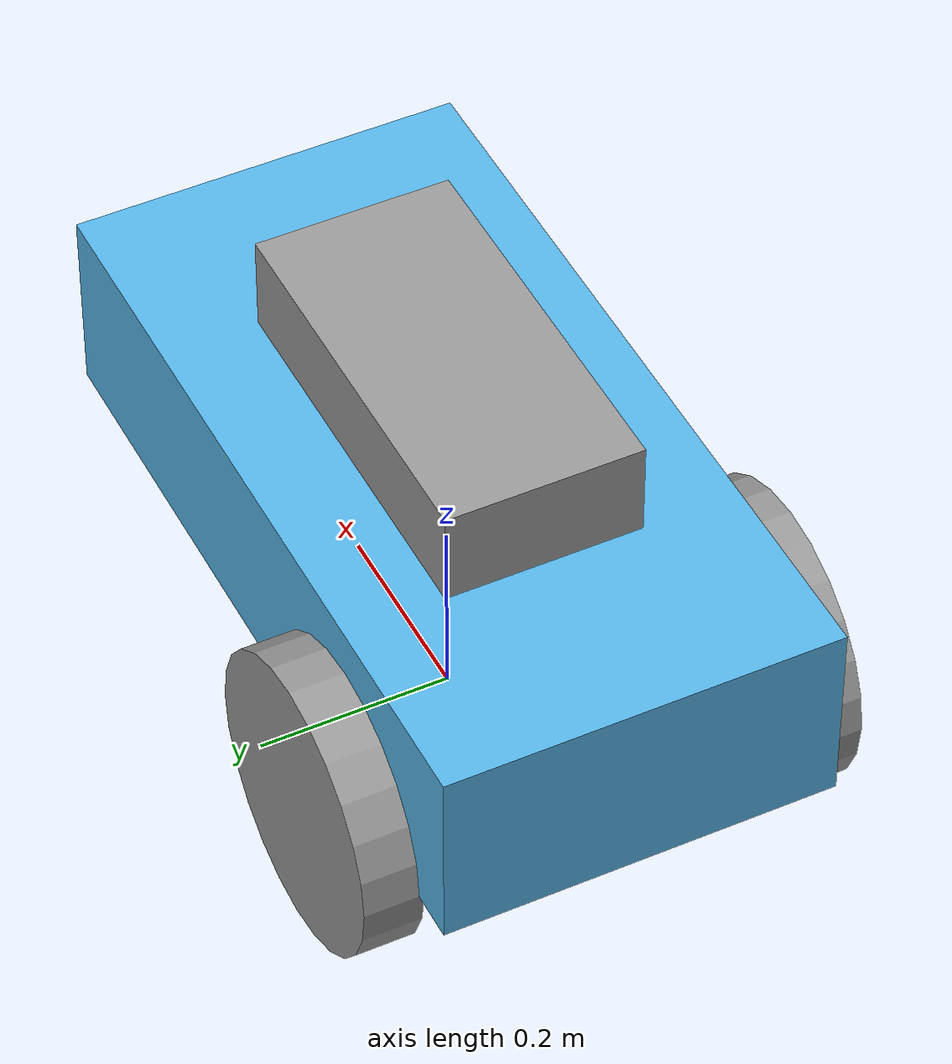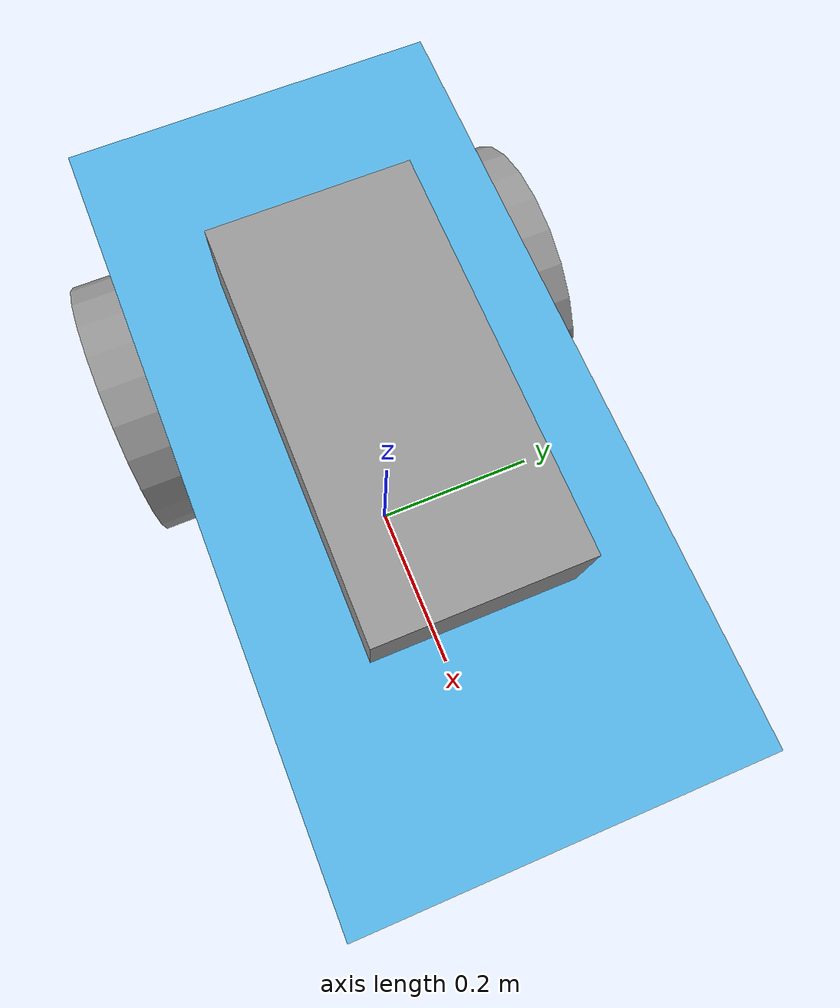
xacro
<?xml version="1.0"?>
<robot xmlns:xacro="http://www.ros.org/wiki/xacro">

<xacro:property name = "base_length" value ="0.8"/>
<xacro:property name = "base_width" value ="0.4"/>
<xacro:property name = "base_height" value ="0.2"/>
<xacro:property name = "wheel_radius" value ="0.15"/>
<xacro:property name = "wheel_length" value ="0.06"/>

<link name ="base_footprint"/>
    <link name ="base_link">
        <visual>
            <geometry>
                <box size = "${base_length} ${base_width} ${base_height}"/>
            </geometry>
            <origin xyz="0 0 ${base_height / 2.0}" rpy ="0 0 0"/>
            <material name ="robot_color"/>
        </visual>
        <collision>
            <geometry>
                <box size = "${base_length} ${base_width} ${base_height}"/>
            </geometry>
            <origin xyz="0 0 ${base_height / 2.0}" rpy ="0 0 0"/>
        </collision>
        <xacro:box_inertia m="5.0" x="${base_length}"
                    y="${base_width}" z="${base_height}"
                    o_xyz ="0 0 ${base_height / 2.0}" o_rpy="0 0 0"
                    />
    </link>

       <link name ="load">
        <visual>
            <geometry>
                <box size = "${base_length/2} ${base_width/2} ${base_height/2}"/>
            </geometry>
            <origin xyz="0 0 ${base_height / 2.0}" rpy ="0 0 0"/>
            <material name ="grey"/>
        </visual>
        <collision>
            <geometry>
                <box size = "${base_length/2} ${base_width/2} ${base_height/2}"/>
            </geometry>
            <origin xyz="0 0 ${base_height / 2.0}" rpy ="0 0 0"/>
        </collision>
        <xacro:box_inertia m="5.0" x="${base_length/2.0}"
                    y="${base_width/2.0}" z="${base_height/2.0}"
                    o_xyz ="0 0 ${base_height/2.0}" o_rpy="0 0 0"
                    />
    </link>

    <link name ="front_sphare">
        <visual>
            <geometry>
            <sphere radius ="${wheel_radius /2.0}"/>
            </geometry>
            <origin xyz ="0 0 0" rpy ="0 0 0"/>
            <material name ="grey"/>
        </visual>

    <collision>
        <geometry>
            <sphere radius = "${wheel_radius /2.0}"/>
        </geometry>
        <origin xyz ="0 0 0" rpy ="0 0 0" />
    </collision>

        <xacro:caster_inertia m="0.5" r ="${wheel_radius /2.0}"
        o_xyz ="0 0 0" o_rpy ="0 0 0" />
    </link>

<xacro:macro name ="robot_wheels" params="prefix" >
    <link name ="${prefix}_wheel_link">
        <visual >
        <geometry>
            <cylinder radius ="${wheel_radius}" length="${wheel_length}"/>
        </geometry>
        <origin xyz ="0 0 0" rpy ="${pi / 2.0} 0 0" />
        <material name ="grey"/>
        </visual>

    <collision>
        <geometry>
            <sphere radius ="${wheel_radius}"/>
        </geometry>
        <origin xyz ="0 0 0" rpy ="0 0 0" />
    </collision>

    <xacro:wheel_inertia m="1.0" h="${wheel_length}" r="${wheel_radius}"
    o_xyz="0 0 0" o_rpy ="${pi / 2.0} 0 0" />
    </link>
</xacro:macro>

    <xacro:robot_wheels  prefix ="right"/>

    <xacro:robot_wheels prefix ="left"/>

    <joint type ="fixed" name ="base_foot_link">
        <parent link ="base_footprint"/>
        <child link ="base_link"/>
        <origin xyz="0 0 ${wheel_radius}" rpy ="0 0 0"/>

    </joint>

    <joint type ="fixed" name ="base_load_link">
        <parent link ="base_link"/>
        <child link ="load"/>
        <origin xyz="0 0 ${wheel_radius}" rpy ="0 0 0"/>

    </joint>
    <joint name = "base_front_sphare_link" type ="continuous">
        <parent link ="base_link"/>
        <child link="front_sphare"/>
        <origin xyz="${base_length / 3.0}  0  ${-wheel_length}" rpy ="0 0 0"/>
        <axis xyz ="0 1 0"/>
    </joint>

    <joint name ="base_right_wheel_joint" type ="continuous">
        <parent link ="base_link"/>
        <child link ="right_wheel_link"/>
        <origin xyz="${-base_length / 4.0} -0.225 0" rpy ="0 0 0"/>
        <axis xyz ="0 1 0"/>
    </joint>

     <joint name ="base_left_wheel_joint"  type ="continuous">
        <parent link ="base_link"/>
        <child link ="left_wheel_link"/>
        <origin xyz="${-base_length / 4.0}  0.225 0" rpy ="0 0 0"/>
        <axis xyz ="0 1 0"/>
    </joint>

</robot>
